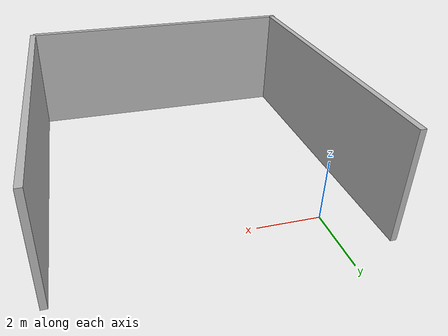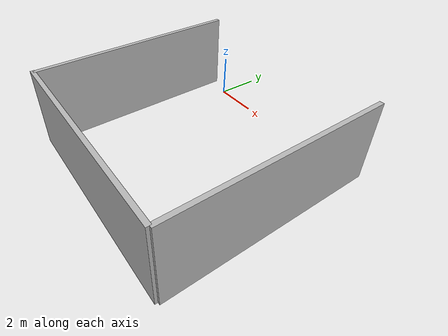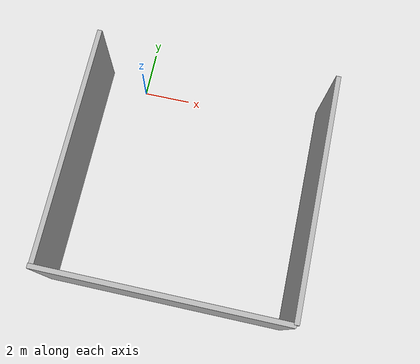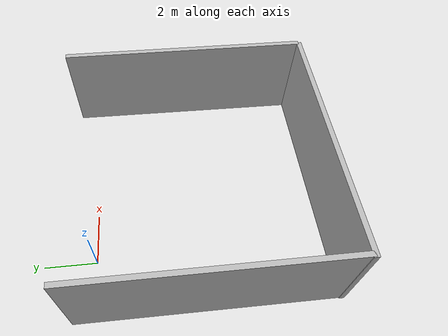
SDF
<sdf version="1.5">
 <world name="default">
  <model name="cutout_wall_0">
   <static>1</static>
   <link name="link">
    <pose>0 0 1.4 0 -0 0</pose>
    <collision name="collision">
     <geometry><box><size>10 0.2 3.8</size></box></geometry>
     <surface>
      <contact>
       <collide_without_contact>1</collide_without_contact>
       <collide_without_contact_bitmask>2</collide_without_contact_bitmask>
      </contact>
     </surface>
    </collision>
    <visual name="visual">
     <cast_shadows>0</cast_shadows>
     <geometry><box><size>10 0.2 3.8</size></box></geometry>
     <material>
      <script>
       <uri>model://cutout_wall/materials/scripts</uri>
       <uri>model://cutout_wall/materials/textures</uri>
       <name>drc_practice/cutout_wall</name>
      </script>
     </material>
    </visual>
    <sensor name="mud_contact" type="contact">
     <always_on>1</always_on>
     <update_rate>1000</update_rate>
     <contact><collision>collision</collision><topic>__default_topic__</topic></contact>
    </sensor>
   </link>
   <plugin name="gazebo_mud" filename="libMudPlugin.so">
    <contact_sensor_name>link/mud_contact</contact_sensor_name>
    <stiffness>0.0</stiffness>
    <damping>40.0</damping>
    <contact_surface_bitmask>2</contact_surface_bitmask>
    <link_name>drill::link</link_name>
   </plugin>
   <pose>-1.94126 -4.0429 0 0 -0 1.57507</pose>
  </model>
  <model name="cutout_wall_1">
   <static>1</static>
   <link name="link">
    <pose>0 0 1.4 0 -0 0</pose>
    <collision name="collision">
     <geometry><box><size>10 0.2 3.8</size></box></geometry>
     <surface>
      <contact>
       <collide_without_contact>1</collide_without_contact>
       <collide_without_contact_bitmask>2</collide_without_contact_bitmask>
      </contact>
     </surface>
    </collision>
    <visual name="visual">
     <cast_shadows>0</cast_shadows>
     <geometry><box><size>10 0.2 3.8</size></box></geometry>
     <material>
      <script>
       <uri>model://cutout_wall/materials/scripts</uri>
       <uri>model://cutout_wall/materials/textures</uri>
       <name>drc_practice/cutout_wall</name>
      </script>
     </material>
    </visual>
    <sensor name="mud_contact" type="contact">
     <always_on>1</always_on>
     <update_rate>1000</update_rate>
     <contact><collision>collision</collision><topic>__default_topic__</topic></contact>
    </sensor>
   </link>
   <plugin name="gazebo_mud" filename="libMudPlugin.so">
    <contact_sensor_name>link/mud_contact</contact_sensor_name>
    <stiffness>0.0</stiffness>
    <damping>40.0</damping>
    <contact_surface_bitmask>2</contact_surface_bitmask>
    <link_name>drill::link</link_name>
   </plugin>
   <pose>2.95415 -9.03799 0 0 -0 0</pose>
  </model>
  <model name="cutout_wall_2">
   <static>1</static>
   <link name="link">
    <pose>0 0 1.4 0 -0 0</pose>
    <collision name="collision">
     <geometry><box><size>10 0.2 3.8</size></box></geometry>
     <surface>
      <contact>
       <collide_without_contact>1</collide_without_contact>
       <collide_without_contact_bitmask>2</collide_without_contact_bitmask>
      </contact>
     </surface>
    </collision>
    <visual name="visual">
     <cast_shadows>0</cast_shadows>
     <geometry><box><size>10 0.2 3.8</size></box></geometry>
     <material>
      <script>
       <uri>model://cutout_wall/materials/scripts</uri>
       <uri>model://cutout_wall/materials/textures</uri>
       <name>drc_practice/cutout_wall</name>
      </script>
     </material>
    </visual>
    <sensor name="mud_contact" type="contact">
     <always_on>1</always_on>
     <update_rate>1000</update_rate>
     <contact><collision>collision</collision><topic>__default_topic__</topic></contact>
    </sensor>
   </link>
   <plugin name="gazebo_mud" filename="libMudPlugin.so">
    <contact_sensor_name>link/mud_contact</contact_sensor_name>
    <stiffness>0.0</stiffness>
    <damping>40.0</damping>
    <contact_surface_bitmask>2</contact_surface_bitmask>
    <link_name>drill::link</link_name>
   </plugin>
   <pose>7.99859 -4.01588 0 0 0 -1.57885</pose>
  </model>
 </world>
</sdf>
